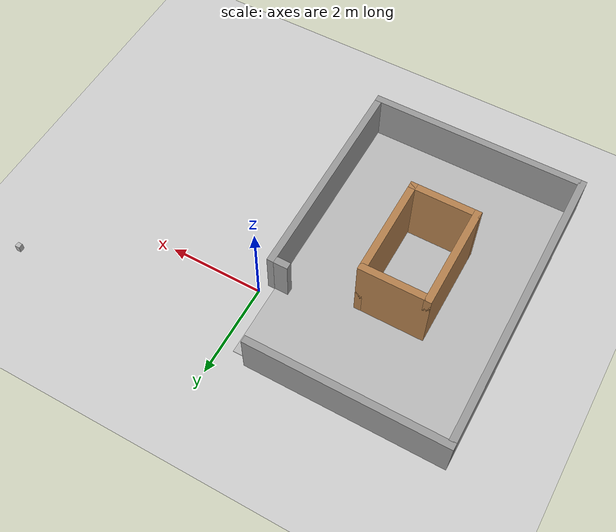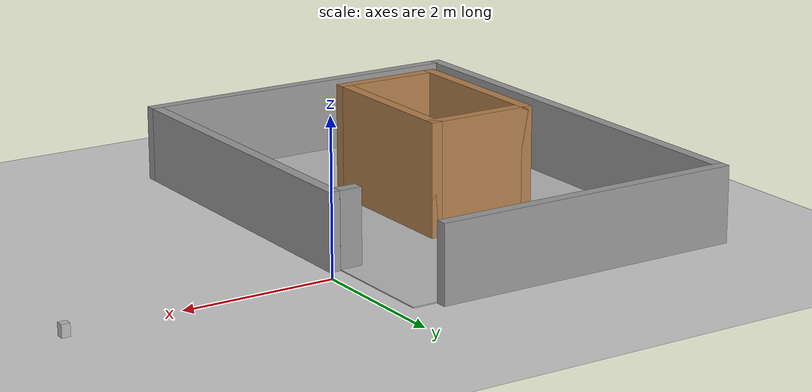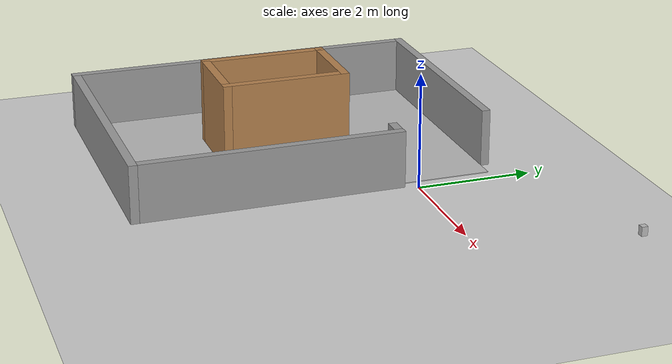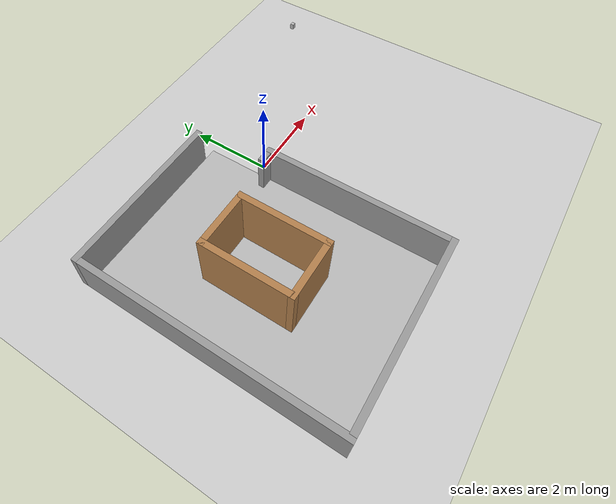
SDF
<sdf version="1.6">
 <world name="default">
  <scene><ambient>0.4 0.4 0.4 1</ambient><background>0.7 0.7 0.7 1</background><shadows>0</shadows></scene>
  <light name="sun" type="directional">
   <cast_shadows>0</cast_shadows>
   <pose>0 0 10 0 -0 0</pose>
   <diffuse>0.8 0.8 0.8 1</diffuse>
   <specular>0.2 0.2 0.2 1</specular>
   <attenuation>
    <range>1000</range>
    <constant>0.9</constant>
    <linear>0.01</linear>
    <quadratic>0.001</quadratic>
   </attenuation>
   <direction>-0.5 0.1 -0.9</direction>
  </light>
  <model name="ground_plane">
   <static>1</static>
   <link name="link">
    <collision name="collision">
     <geometry><plane><normal>0 0 1</normal><size>100 100</size></plane></geometry>
     <surface><friction><ode><mu>100</mu><mu2>50</mu2></ode></friction></surface>
    </collision>
    <visual name="visual">
     <cast_shadows>0</cast_shadows>
     <geometry><plane><normal>0 0 1</normal><size>100 100</size></plane></geometry>
     <material>
      <script><uri>file://media/materials/scripts/gazebo.material</uri><name>Gazebo/Grey</name></script>
     </material>
    </visual>
   </link>
  </model>
  <physics name="default_physics" default="0" type="ode">
   <real_time_update_rate>1000</real_time_update_rate>
   <max_step_size>0.001</max_step_size>
   <real_time_factor>1</real_time_factor>
   <ode>
    <solver>
     <type>quick</type>
     <iters>150</iters>
     <precon_iters>0</precon_iters>
     <sor>1.4</sor>
     <use_dynamic_moi_rescaling>1</use_dynamic_moi_rescaling>
    </solver>
    <constraints>
     <cfm>1e-05</cfm>
     <erp>0.2</erp>
     <contact_max_correcting_vel>2000</contact_max_correcting_vel>
     <contact_surface_layer>0.01</contact_surface_layer>
    </constraints>
   </ode>
  </physics>
  <gravity>0 0 -9.8</gravity>
  <magnetic_field>6e-06 2.3e-05 -4.2e-05</magnetic_field>
  <atmosphere type="adiabatic"/>
  <audio><device>default</device></audio>
  <spherical_coordinates>
   <surface_model>EARTH_WGS84</surface_model>
   <latitude_deg>0</latitude_deg>
   <longitude_deg>0</longitude_deg>
   <elevation>0</elevation>
   <heading_deg>0</heading_deg>
  </spherical_coordinates>
  <model name="Workshop">
   <link name="Wall_10">
    <collision name="Wall_10_Collision">
     <geometry><box><size>6.26 0.15 1</size></box></geometry>
     <pose>0 0 0.5 0 -0 0</pose>
    </collision>
    <visual name="Wall_10_Visual">
     <pose>0 0 0.5 0 -0 0</pose>
     <geometry><box><size>6.26 0.15 1</size></box></geometry>
     <material>
      <script><uri>file://media/materials/scripts/gazebo.material</uri><name>Gazebo/Grey</name></script>
      <ambient>0 0 0 1</ambient>
     </material>
    </visual>
    <pose>-0.0745 2.24856 0 0 -0 0</pose>
   </link>
   <link name="Wall_11">
    <collision name="Wall_11_Collision">
     <geometry><box><size>4.19994 0.15 1</size></box></geometry>
     <pose>0 0 0.5 0 -0 0</pose>
    </collision>
    <visual name="Wall_11_Visual">
     <pose>0 0 0.5 0 -0 0</pose>
     <geometry><box><size>4.19994 0.15 1</size></box></geometry>
     <material>
      <script><uri>file://media/materials/scripts/gazebo.material</uri><name>Gazebo/Grey</name></script>
      <ambient>0 0 0 1</ambient>
     </material>
    </visual>
    <pose>3.12 0.2235 0 0 0 -1.5708</pose>
   </link>
   <link name="Wall_13">
    <collision name="Wall_13_Collision">
     <geometry><box><size>4.55706 0.15 1</size></box></geometry>
     <pose>0 0 0.5 0 -0 0</pose>
    </collision>
    <visual name="Wall_13_Visual">
     <pose>0 0 0.5 0 -0 0</pose>
     <geometry><box><size>4.55706 0.15 1</size></box></geometry>
     <material>
      <script><uri>file://media/materials/scripts/gazebo.material</uri><name>Gazebo/Grey</name></script>
      <ambient>0 0 0 1</ambient>
     </material>
    </visual>
    <pose>-3.1295 -0.075 0 0 0 -1.5708</pose>
   </link>
   <link name="Wall_15">
    <collision name="Wall_15_Collision">
     <geometry><box><size>4.521 0.15 1</size></box></geometry>
     <pose>0 0 0.5 0 -0 0</pose>
    </collision>
    <visual name="Wall_15_Visual">
     <pose>0 0 0.5 0 -0 0</pose>
     <geometry><box><size>4.521 0.15 1</size></box></geometry>
     <material>
      <script><uri>file://media/materials/scripts/gazebo.material</uri><name>Gazebo/Grey</name></script>
      <ambient>0 0 0 1</ambient>
     </material>
    </visual>
    <pose>-0.794 -2.2785 0 0 -0 0</pose>
   </link>
   <link name="Wall_17">
    <collision name="Wall_17_Collision">
     <geometry><box><size>0.302 0.15 1</size></box></geometry>
     <pose>0 0 0.5 0 -0 0</pose>
    </collision>
    <visual name="Wall_17_Visual">
     <pose>0 0 0.5 0 -0 0</pose>
     <geometry><box><size>0.302 0.15 1</size></box></geometry>
     <material>
      <script><uri>file://media/materials/scripts/gazebo.material</uri><name>Gazebo/Grey</name></script>
      <ambient>0 0 0 1</ambient>
     </material>
    </visual>
    <pose>1.392 -2.05744 0 0 -0 1.5708</pose>
   </link>
   <link name="Wall_19">
    <collision name="Wall_19_Collision">
     <geometry><box><size>6.099 4.38 0.013</size></box></geometry>
     <pose>0 0 0.0065 0 -0 0</pose>
     <surface><friction><ode><mu>1</mu><mu2>1</mu2></ode></friction></surface>
    </collision>
    <visual name="Wall_19_Visual">
     <pose>0 0 0.0065 0 -0 0</pose>
     <geometry><box><size>6.099 4.38 0.013</size></box></geometry>
     <material>
      <script>
       <uri>model://Workshop/materials/scripts</uri>
       <uri>model://Workshop/materials/textures</uri>
       <name>rubber</name>
      </script>
     </material>
    </visual>
    <pose>-0.005116 -0.013556 0 0 -0 0</pose>
    <velocity_decay><linear>0</linear><angular>0</angular></velocity_decay>
   </link>
   <static>1</static>
   <pose>-2.44352 -1.67785 0 0 -0 1.57303</pose>
  </model>
  <model name="tea_box">
   <link name="link">
    <pose>0 0 0.075 0 -0 0</pose>
    <visual name="visual">
     <geometry><box><size>0.1 0.1 0.15</size></box></geometry>
     <material>
      <script>
       <uri>model://tea_box/materials/scripts</uri>
       <uri>model://tea_box/materials/textures</uri>
       <name>tea_pat</name>
      </script>
     </material>
    </visual>
    <collision name="collision"><geometry><box><size>0.1 0.1 0.15</size></box></geometry></collision>
   </link>
   <static>1</static>
   <pose>4.27785 1.80097 0.73166 0 0 -1.57361</pose>
  </model>
  <model name="sdaw">
   <pose>-2.55291 -1.71833 0 0 -0 0</pose>
   <link name="Wall_14">
    <collision name="Wall_14_Collision">
     <geometry><box><size>1.5 0.15 1.5</size></box></geometry>
     <pose>0 0 0.75 0 -0 0</pose>
    </collision>
    <visual name="Wall_14_Visual">
     <pose>0 0 0.75 0 -0 0</pose>
     <geometry><box><size>1.5 0.15 1.5</size></box></geometry>
     <material>
      <script><uri>file://media/materials/scripts/gazebo.material</uri><name>Gazebo/Wood</name></script>
      <ambient>0.760784 0.662745 0.627451 1</ambient>
     </material>
     <meta><layer>0</layer></meta>
    </visual>
    <pose>-0 1.05 0 0 -0 0</pose>
   </link>
   <link name="Wall_15">
    <collision name="Wall_15_Collision">
     <geometry><box><size>2.25 0.15 1.5</size></box></geometry>
     <pose>0 0 0.75 0 -0 0</pose>
    </collision>
    <visual name="Wall_15_Visual">
     <pose>0 0 0.75 0 -0 0</pose>
     <geometry><box><size>2.25 0.15 1.5</size></box></geometry>
     <material>
      <script><uri>file://media/materials/scripts/gazebo.material</uri><name>Gazebo/Wood</name></script>
      <ambient>0.760784 0.662745 0.627451 1</ambient>
     </material>
     <meta><layer>0</layer></meta>
    </visual>
    <pose>0.675 0 0 0 -0 -1.5708</pose>
   </link>
   <link name="Wall_16">
    <collision name="Wall_16_Collision">
     <geometry><box><size>1.5 0.15 1.5</size></box></geometry>
     <pose>0 0 0.75 0 -0 0</pose>
    </collision>
    <visual name="Wall_16_Visual">
     <pose>0 0 0.75 0 -0 0</pose>
     <geometry><box><size>1.5 0.15 1.5</size></box></geometry>
     <material>
      <script><uri>file://media/materials/scripts/gazebo.material</uri><name>Gazebo/Wood</name></script>
      <ambient>0.760784 0.662745 0.627451 1</ambient>
     </material>
     <meta><layer>0</layer></meta>
    </visual>
    <pose>-0 -1.05 0 0 -0 3.14159</pose>
   </link>
   <link name="Wall_17">
    <collision name="Wall_17_Collision">
     <geometry><box><size>2.25 0.15 1.5</size></box></geometry>
     <pose>0 0 0.75 0 -0 0</pose>
    </collision>
    <visual name="Wall_17_Visual">
     <pose>0 0 0.75 0 -0 0</pose>
     <geometry><box><size>2.25 0.15 1.5</size></box></geometry>
     <material>
      <script><uri>file://media/materials/scripts/gazebo.material</uri><name>Gazebo/Wood</name></script>
      <ambient>0.760784 0.662745 0.627451 1</ambient>
     </material>
     <meta><layer>0</layer></meta>
    </visual>
    <pose>-0.675 0 0 0 -0 1.5708</pose>
   </link>
   <static>1</static>
  </model>
 </world>
</sdf>
